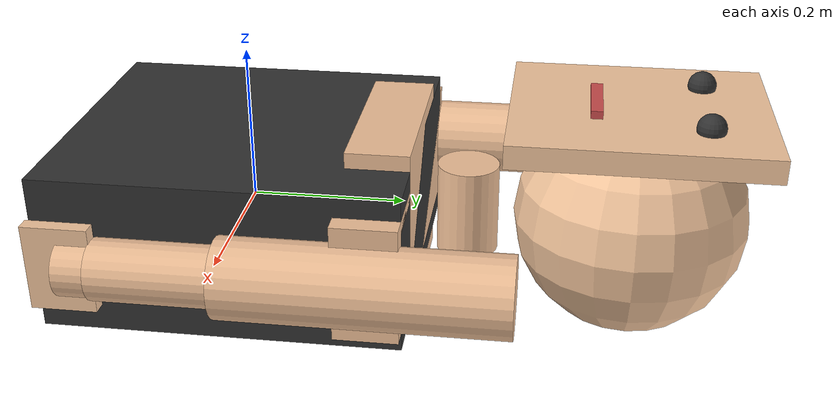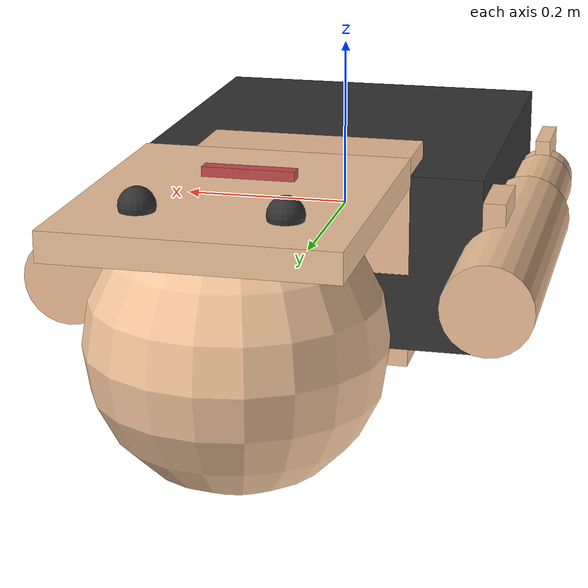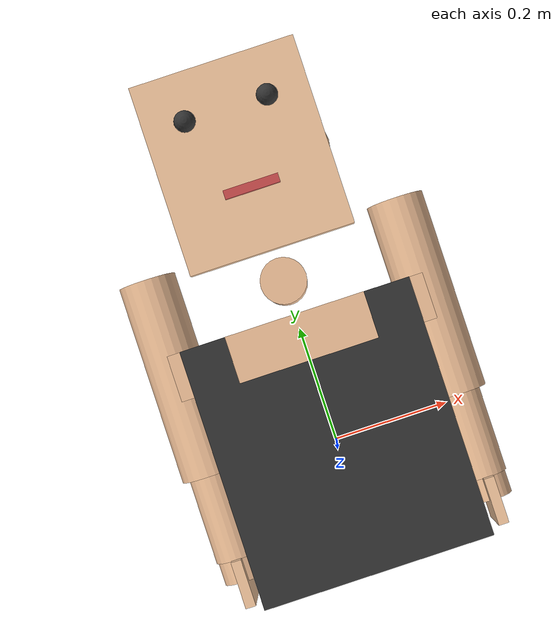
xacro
<?xml version="1.0"?>
<robot name="humanoid_full_body" xmlns:xacro="http://wiki.ros.org/xacro">

  <!-- ==================== INCLUDES ==================== -->
  <!-- Include hand articulation macros from dual_robotic_hands -->
  <xacro:include filename="$(find arm_simulation)/urdf/hand_macros.urdf.xacro"/>

  <!-- ==================== BODY DIMENSIONS ==================== -->
  <!-- Head -->
  <xacro:property name="head_radius" value="0.15" />
  <xacro:property name="face_width" value="0.28" />
  <xacro:property name="face_height" value="0.32" />
  <xacro:property name="face_depth" value="0.03" />

  <!-- Neck -->
  <xacro:property name="neck_length" value="0.12" />
  <xacro:property name="neck_radius" value="0.04" />

  <!-- Shoulders -->
  <xacro:property name="shoulder_width" value="0.45" />
  <xacro:property name="shoulder_depth" value="0.15" />
  <xacro:property name="shoulder_height" value="0.08" />

  <!-- Torso -->
  <xacro:property name="torso_width" value="0.40" />
  <xacro:property name="torso_height" value="0.45" />
  <xacro:property name="torso_depth" value="0.20" />

  <!-- Arms -->
  <xacro:property name="upper_arm_length" value="0.35" />
  <xacro:property name="upper_arm_radius" value="0.05" />
  <xacro:property name="forearm_length" value="0.30" />
  <xacro:property name="forearm_radius" value="0.038" />
  <xacro:property name="wrist_length" value="0.08" />
  <xacro:property name="wrist_radius" value="0.035" />

  <!-- ==================== MATERIALS ==================== -->
  <material name="skin_face">
    <color rgba="0.96 0.78 0.62 1.0"/>
  </material>

  <material name="skin_body">
    <color rgba="0.95 0.76 0.60 1.0"/>
  </material>

  <material name="skin_hand">
    <color rgba="0.96 0.78 0.62 1.0"/>
  </material>

  <material name="clothing_torso">
    <color rgba="0.2 0.2 0.2 1.0"/>
  </material>

  <material name="eyes">
    <color rgba="0.2 0.2 0.2 1.0"/>
  </material>

  <material name="mouth">
    <color rgba="0.8 0.3 0.3 1.0"/>
  </material>

  <!-- ==================== WORLD LINK ==================== -->
  <link name="world">
    <inertial>
      <mass value="0.001"/>
      <inertia ixx="0.000001" ixy="0" ixz="0" iyy="0.000001" iyz="0" izz="0.000001"/>
      <origin xyz="0 0 0" rpy="0 0 0"/>
    </inertial>
  </link>

  <!-- ==================== TORSO (MAIN BODY) ==================== -->
  <link name="torso">
    <visual>
      <geometry>
        <box size="${torso_width} ${torso_height} ${torso_depth}"/>
      </geometry>
      <material name="clothing_torso"/>
      <origin xyz="0 0 0" rpy="0 0 0"/>
    </visual>

    <visual>
      <geometry>
        <box size="${torso_width * 0.6} 0.08 ${torso_depth * 1.2}"/>
      </geometry>
      <material name="skin_body"/>
      <origin xyz="0 ${torso_height/2 - 0.04} 0" rpy="0 0 0"/>
    </visual>

    <collision>
      <geometry>
        <box size="${torso_width} ${torso_height} ${torso_depth}"/>
      </geometry>
      <origin xyz="0 0 0" rpy="0 0 0"/>
    </collision>

    <inertial>
      <mass value="5.0"/>
      <inertia ixx="0.2" ixy="0" ixz="0" iyy="0.2" iyz="0" izz="0.15"/>
      <origin xyz="0 0 0" rpy="0 0 0"/>
    </inertial>
  </link>

  <joint name="torso_joint" type="fixed">
    <parent link="world"/>
    <child link="torso"/>
    <origin xyz="0 0 0" rpy="0 0 0"/>
  </joint>

  <!-- ==================== NECK AND HEAD ==================== -->
  <link name="neck">
    <visual>
      <geometry>
        <cylinder radius="${neck_radius}" length="${neck_length}"/>
      </geometry>
      <material name="skin_body"/>
      <origin xyz="0 0 0" rpy="0 0 0"/>
    </visual>

    <collision>
      <geometry>
        <cylinder radius="${neck_radius}" length="${neck_length}"/>
      </geometry>
      <origin xyz="0 0 0" rpy="0 0 0"/>
    </collision>

    <inertial>
      <mass value="0.5"/>
      <inertia ixx="0.01" ixy="0" ixz="0" iyy="0.01" iyz="0" izz="0.005"/>
      <origin xyz="0 0 0" rpy="0 0 0"/>
    </inertial>
  </link>

  <joint name="neck_joint" type="fixed">
    <parent link="torso"/>
    <child link="neck"/>
    <origin xyz="0 ${torso_height/2 + neck_length/2} 0" rpy="0 0 0"/>
  </joint>

  <link name="head">
    <visual>
      <geometry>
        <sphere radius="${head_radius}"/>
      </geometry>
      <material name="skin_face"/>
      <origin xyz="0 0 0" rpy="0 0 0"/>
    </visual>

    <visual>
      <geometry>
        <box size="${face_width} ${face_height} ${face_depth}"/>
      </geometry>
      <material name="skin_face"/>
      <origin xyz="0 0 ${head_radius - face_depth/2}" rpy="0 0 0"/>
    </visual>

    <visual>
      <geometry>
        <sphere radius="0.018"/>
      </geometry>
      <material name="eyes"/>
      <origin xyz="${face_width/4} ${face_height/4} ${head_radius + 0.005}" rpy="0 0 0"/>
    </visual>

    <visual>
      <geometry>
        <sphere radius="0.018"/>
      </geometry>
      <material name="eyes"/>
      <origin xyz="${-face_width/4} ${face_height/4} ${head_radius + 0.005}" rpy="0 0 0"/>
    </visual>

    <visual>
      <geometry>
        <box size="${face_width/3} 0.015 0.01"/>
      </geometry>
      <material name="mouth"/>
      <origin xyz="0 ${-face_height/6} ${head_radius + 0.005}" rpy="0 0 0"/>
    </visual>

    <collision>
      <geometry>
        <sphere radius="${head_radius}"/>
      </geometry>
      <origin xyz="0 0 0" rpy="0 0 0"/>
    </collision>

    <inertial>
      <mass value="3.0"/>
      <inertia ixx="0.08" ixy="0" ixz="0" iyy="0.08" iyz="0" izz="0.08"/>
      <origin xyz="0 0 0" rpy="0 0 0"/>
    </inertial>
  </link>

  <joint name="head_joint" type="fixed">
    <parent link="neck"/>
    <child link="head"/>
    <origin xyz="0 ${neck_length/2 + head_radius} 0" rpy="0 0 0"/>
  </joint>

  <!-- ==================== SHOULDERS ==================== -->
  <link name="shoulders">
    <visual>
      <geometry>
        <box size="${shoulder_width} ${shoulder_height} ${shoulder_depth}"/>
      </geometry>
      <material name="skin_body"/>
      <origin xyz="0 0 0" rpy="0 0 0"/>
    </visual>

    <collision>
      <geometry>
        <box size="${shoulder_width} ${shoulder_height} ${shoulder_depth}"/>
      </geometry>
      <origin xyz="0 0 0" rpy="0 0 0"/>
    </collision>

    <inertial>
      <mass value="1.0"/>
      <inertia ixx="0.02" ixy="0" ixz="0" iyy="0.05" iyz="0" izz="0.05"/>
      <origin xyz="0 0 0" rpy="0 0 0"/>
    </inertial>
  </link>

  <joint name="shoulders_joint" type="fixed">
    <parent link="torso"/>
    <child link="shoulders"/>
    <origin xyz="0 ${torso_height/2 - shoulder_height/2} 0" rpy="0 0 0"/>
  </joint>

  <!-- ==================== LEFT ARM ==================== -->
  <link name="left_upper_arm">
    <visual>
      <geometry>
        <cylinder radius="${upper_arm_radius}" length="${upper_arm_length}"/>
      </geometry>
      <material name="skin_body"/>
      <origin xyz="0 0 0" rpy="1.5708 0 0"/>
    </visual>

    <collision>
      <geometry>
        <cylinder radius="${upper_arm_radius}" length="${upper_arm_length}"/>
      </geometry>
      <origin xyz="0 0 0" rpy="1.5708 0 0"/>
    </collision>

    <inertial>
      <mass value="2.0"/>
      <inertia ixx="0.01" ixy="0" ixz="0" iyy="0.01" iyz="0" izz="0.005"/>
      <origin xyz="0 0 0" rpy="0 0 0"/>
    </inertial>
  </link>

  <joint name="left_shoulder_joint" type="fixed">
    <parent link="shoulders"/>
    <child link="left_upper_arm"/>
    <origin xyz="${shoulder_width/2} 0 0" rpy="0 0 0"/>
  </joint>

  <link name="left_forearm">
    <visual>
      <geometry>
        <cylinder radius="${forearm_radius}" length="${forearm_length}"/>
      </geometry>
      <material name="skin_body"/>
      <origin xyz="0 0 0" rpy="1.5708 0 0"/>
    </visual>

    <collision>
      <geometry>
        <cylinder radius="${forearm_radius}" length="${forearm_length}"/>
      </geometry>
      <origin xyz="0 0 0" rpy="1.5708 0 0"/>
    </collision>

    <inertial>
      <mass value="1.5"/>
      <inertia ixx="0.008" ixy="0" ixz="0" iyy="0.008" iyz="0" izz="0.003"/>
      <origin xyz="0 0 0" rpy="0 0 0"/>
    </inertial>
  </link>

  <joint name="left_elbow_joint" type="fixed">
    <parent link="left_upper_arm"/>
    <child link="left_forearm"/>
    <origin xyz="0 ${-upper_arm_length/2} 0" rpy="0 0 0"/>
  </joint>

  <link name="left_wrist">
    <visual>
      <geometry>
        <cylinder radius="${wrist_radius}" length="${wrist_length}"/>
      </geometry>
      <material name="skin_body"/>
      <origin xyz="0 0 0" rpy="1.5708 0 0"/>
    </visual>

    <collision>
      <geometry>
        <cylinder radius="${wrist_radius}" length="${wrist_length}"/>
      </geometry>
      <origin xyz="0 0 0" rpy="1.5708 0 0"/>
    </collision>

    <inertial>
      <mass value="0.5"/>
      <inertia ixx="0.002" ixy="0" ixz="0" iyy="0.002" iyz="0" izz="0.001"/>
      <origin xyz="0 0 0" rpy="0 0 0"/>
    </inertial>
  </link>

  <joint name="left_wrist_joint" type="fixed">
    <parent link="left_forearm"/>
    <child link="left_wrist"/>
    <origin xyz="0 ${-forearm_length/2} 0" rpy="0 0 0"/>
  </joint>

  <!-- LEFT HAND PALM BASE -->
  <link name="left_hand_base">
    <visual>
      <geometry>
        <box size="0.110 0.082 0.018"/>
      </geometry>
      <material name="skin_hand"/>
      <origin xyz="0 0 0" rpy="0 0 0"/>
    </visual>

    <collision>
      <geometry>
        <box size="0.110 0.082 0.018"/>
      </geometry>
      <origin xyz="0 0 0" rpy="0 0 0"/>
    </collision>

    <inertial>
      <mass value="0.6"/>
      <inertia ixx="0.001" ixy="0" ixz="0" iyy="0.001" iyz="0" izz="0.001"/>
      <origin xyz="0 0 0" rpy="0 0 0"/>
    </inertial>
  </link>

  <joint name="left_hand_base_joint" type="fixed">
    <parent link="left_wrist"/>
    <child link="left_hand_base"/>
    <origin xyz="0 ${-wrist_length/2} 0" rpy="0 1.5708 0"/>
  </joint>

  <!-- ==================== RIGHT ARM ==================== -->
  <link name="right_upper_arm">
    <visual>
      <geometry>
        <cylinder radius="${upper_arm_radius}" length="${upper_arm_length}"/>
      </geometry>
      <material name="skin_body"/>
      <origin xyz="0 0 0" rpy="1.5708 0 0"/>
    </visual>

    <collision>
      <geometry>
        <cylinder radius="${upper_arm_radius}" length="${upper_arm_length}"/>
      </geometry>
      <origin xyz="0 0 0" rpy="1.5708 0 0"/>
    </collision>

    <inertial>
      <mass value="2.0"/>
      <inertia ixx="0.01" ixy="0" ixz="0" iyy="0.01" iyz="0" izz="0.005"/>
      <origin xyz="0 0 0" rpy="0 0 0"/>
    </inertial>
  </link>

  <joint name="right_shoulder_joint" type="fixed">
    <parent link="shoulders"/>
    <child link="right_upper_arm"/>
    <origin xyz="${-shoulder_width/2} 0 0" rpy="0 0 0"/>
  </joint>

  <link name="right_forearm">
    <visual>
      <geometry>
        <cylinder radius="${forearm_radius}" length="${forearm_length}"/>
      </geometry>
      <material name="skin_body"/>
      <origin xyz="0 0 0" rpy="1.5708 0 0"/>
    </visual>

    <collision>
      <geometry>
        <cylinder radius="${forearm_radius}" length="${forearm_length}"/>
      </geometry>
      <origin xyz="0 0 0" rpy="1.5708 0 0"/>
    </collision>

    <inertial>
      <mass value="1.5"/>
      <inertia ixx="0.008" ixy="0" ixz="0" iyy="0.008" iyz="0" izz="0.003"/>
      <origin xyz="0 0 0" rpy="0 0 0"/>
    </inertial>
  </link>

  <joint name="right_elbow_joint" type="fixed">
    <parent link="right_upper_arm"/>
    <child link="right_forearm"/>
    <origin xyz="0 ${-upper_arm_length/2} 0" rpy="0 0 0"/>
  </joint>

  <link name="right_wrist">
    <visual>
      <geometry>
        <cylinder radius="${wrist_radius}" length="${wrist_length}"/>
      </geometry>
      <material name="skin_body"/>
      <origin xyz="0 0 0" rpy="1.5708 0 0"/>
    </visual>

    <collision>
      <geometry>
        <cylinder radius="${wrist_radius}" length="${wrist_length}"/>
      </geometry>
      <origin xyz="0 0 0" rpy="1.5708 0 0"/>
    </collision>

    <inertial>
      <mass value="0.5"/>
      <inertia ixx="0.002" ixy="0" ixz="0" iyy="0.002" iyz="0" izz="0.001"/>
      <origin xyz="0 0 0" rpy="0 0 0"/>
    </inertial>
  </link>

  <joint name="right_wrist_joint" type="fixed">
    <parent link="right_forearm"/>
    <child link="right_wrist"/>
    <origin xyz="0 ${-forearm_length/2} 0" rpy="0 0 0"/>
  </joint>

  <!-- RIGHT HAND PALM BASE -->
  <link name="right_hand_base">
    <visual>
      <geometry>
        <box size="0.110 0.082 0.018"/>
      </geometry>
      <material name="skin_hand"/>
      <origin xyz="0 0 0" rpy="0 0 0"/>
    </visual>

    <collision>
      <geometry>
        <box size="0.110 0.082 0.018"/>
      </geometry>
      <origin xyz="0 0 0" rpy="0 0 0"/>
    </collision>

    <inertial>
      <mass value="0.6"/>
      <inertia ixx="0.001" ixy="0" ixz="0" iyy="0.001" iyz="0" izz="0.001"/>
      <origin xyz="0 0 0" rpy="0 0 0"/>
    </inertial>
  </link>

  <joint name="right_hand_base_joint" type="fixed">
    <parent link="right_wrist"/>
    <child link="right_hand_base"/>
    <origin xyz="0 ${-wrist_length/2} 0" rpy="0 1.5708 0"/>
  </joint>

</robot>
